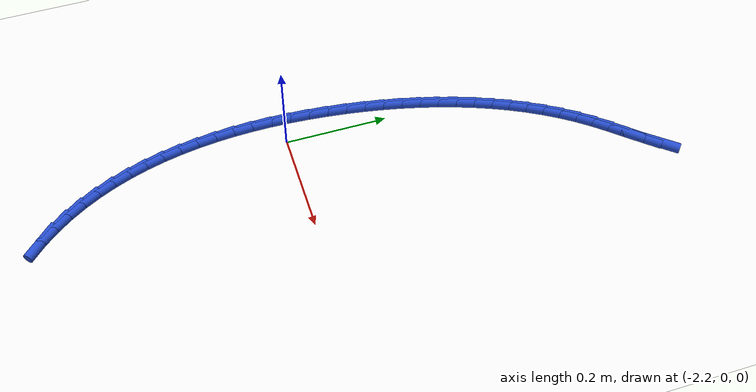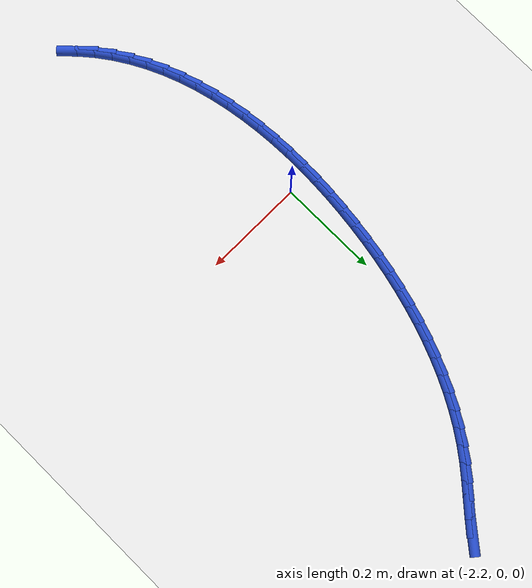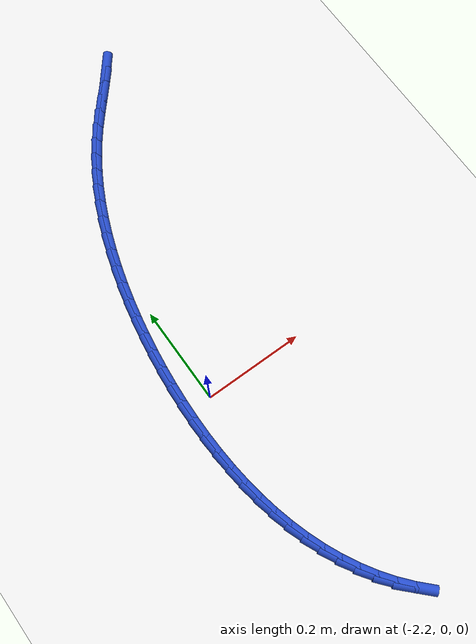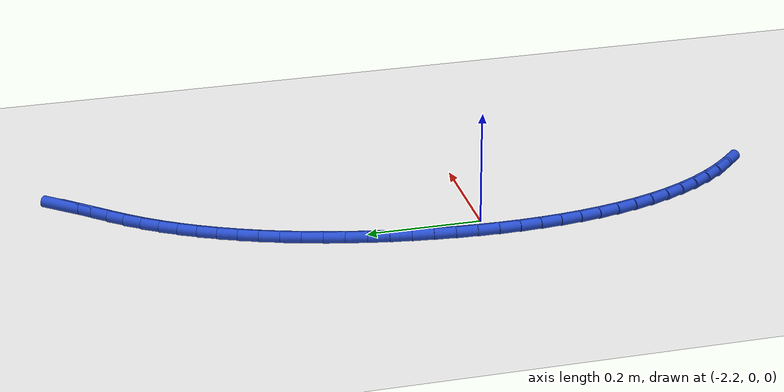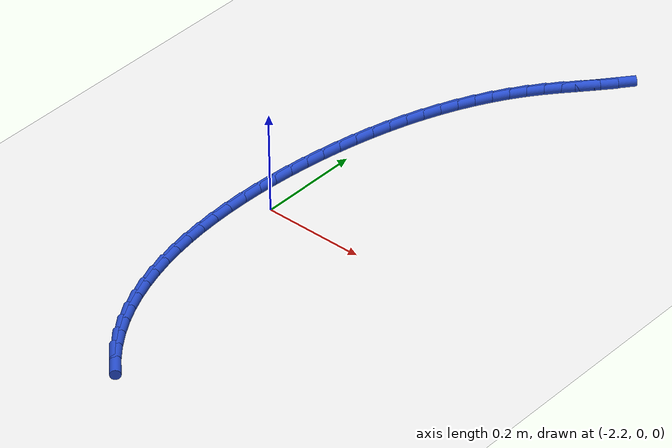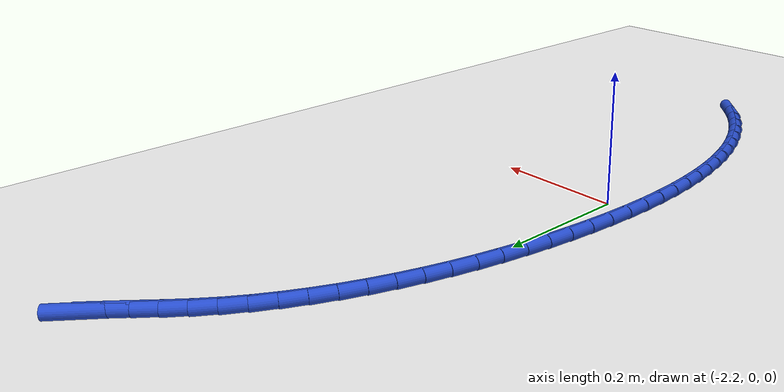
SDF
<sdf version="1.6">
 <world name="default">
  <model name="ground_plane">
   <static>1</static>
   <link name="link">
    <collision name="collision">
     <geometry><plane><normal>0 0 1</normal><size>100 100</size></plane></geometry>
     <surface><friction><ode><mu>100</mu><mu2>50</mu2></ode></friction></surface>
    </collision>
    <visual name="visual">
     <cast_shadows>0</cast_shadows>
     <geometry><plane><normal>0 0 1</normal><size>100 100</size></plane></geometry>
     <material>
      <script><uri>file://media/materials/scripts/gazebo.material</uri><name>Gazebo/WhiteGlow</name></script>
     </material>
    </visual>
   </link>
  </model>
  <model name="line">
   <link name="link_94">
    <pose>-1.9786997214927005 0.6858837882561126 0.01 0 1.57 0.8892330954018293</pose>
    <collision name="collision">
     <geometry><cylinder><radius>0.01</radius><length>0.08</length></cylinder></geometry>
    </collision>
    <visual name="visual">
     <material>
      <script><name>Gazebo/Blue</name><uri>file://media/materials/scripts/gazebo.material</uri></script>
     </material>
     <geometry><cylinder><radius>0.01</radius><length>0.08</length></cylinder></geometry>
    </visual>
   </link>
   <link name="link_95">
    <pose>-2.0004023106387288 0.6591317566187499 0.01 0 1.57 0.8581218830875417</pose>
    <collision name="collision">
     <geometry><cylinder><radius>0.01</radius><length>0.08</length></cylinder></geometry>
    </collision>
    <visual name="visual">
     <material>
      <script><name>Gazebo/Blue</name><uri>file://media/materials/scripts/gazebo.material</uri></script>
     </material>
     <geometry><cylinder><radius>0.01</radius><length>0.08</length></cylinder></geometry>
    </visual>
   </link>
   <link name="link_96">
    <pose>-2.0221857217289436 0.6339250092426056 0.01 0 1.57 0.8524767660049437</pose>
    <collision name="collision">
     <geometry><cylinder><radius>0.01</radius><length>0.08</length></cylinder></geometry>
    </collision>
    <visual name="visual">
     <material>
      <script><name>Gazebo/Blue</name><uri>file://media/materials/scripts/gazebo.material</uri></script>
     </material>
     <geometry><cylinder><radius>0.01</radius><length>0.08</length></cylinder></geometry>
    </visual>
   </link>
   <link name="link_97">
    <pose>-2.0436583433607773 0.6093595793162992 0.01 0 1.57 0.8741557944249504</pose>
    <collision name="collision">
     <geometry><cylinder><radius>0.01</radius><length>0.08</length></cylinder></geometry>
    </collision>
    <visual name="visual">
     <material>
      <script><name>Gazebo/Blue</name><uri>file://media/materials/scripts/gazebo.material</uri></script>
     </material>
     <geometry><cylinder><radius>0.01</radius><length>0.08</length></cylinder></geometry>
    </visual>
   </link>
   <link name="link_98">
    <pose>-2.064428564131662 0.584531500028451 0.01 0 1.57 0.9207193345305165</pose>
    <collision name="collision">
     <geometry><cylinder><radius>0.01</radius><length>0.08</length></cylinder></geometry>
    </collision>
    <visual name="visual">
     <material>
      <script><name>Gazebo/Blue</name><uri>file://media/materials/scripts/gazebo.material</uri></script>
     </material>
     <geometry><cylinder><radius>0.01</radius><length>0.08</length></cylinder></geometry>
    </visual>
   </link>
   <link name="link_99">
    <pose>-2.0841358140235586 0.5586120225135351 0.01 0 1.57 0.9731442164202896</pose>
    <collision name="collision">
     <geometry><cylinder><radius>0.01</radius><length>0.08</length></cylinder></geometry>
    </collision>
    <visual name="visual">
     <material>
      <script><name>Gazebo/Blue</name><uri>file://media/materials/scripts/gazebo.material</uri></script>
     </material>
     <geometry><cylinder><radius>0.01</radius><length>0.08</length></cylinder></geometry>
    </visual>
   </link>
   <link name="link_100">
    <pose>-2.1026711241217115 0.531382065240483 0.01 0 1.57 1.022707838997642</pose>
    <collision name="collision">
     <geometry><cylinder><radius>0.01</radius><length>0.08</length></cylinder></geometry>
    </collision>
    <visual name="visual">
     <material>
      <script><name>Gazebo/Blue</name><uri>file://media/materials/scripts/gazebo.material</uri></script>
     </material>
     <geometry><cylinder><radius>0.01</radius><length>0.08</length></cylinder></geometry>
    </visual>
   </link>
   <link name="link_101">
    <pose>-2.120047600828256 0.5029183535410812 0.01 0 1.57 1.069477981072272</pose>
    <collision name="collision">
     <geometry><cylinder><radius>0.01</radius><length>0.08</length></cylinder></geometry>
    </collision>
    <visual name="visual">
     <material>
      <script><name>Gazebo/Blue</name><uri>file://media/materials/scripts/gazebo.material</uri></script>
     </material>
     <geometry><cylinder><radius>0.01</radius><length>0.08</length></cylinder></geometry>
    </visual>
   </link>
   <link name="link_102">
    <pose>-2.136279156467474 0.47329956561774994 0.01 0 1.57 1.1136081157005502</pose>
    <collision name="collision">
     <geometry><cylinder><radius>0.01</radius><length>0.08</length></cylinder></geometry>
    </collision>
    <visual name="visual">
     <material>
      <script><name>Gazebo/Blue</name><uri>file://media/materials/scripts/gazebo.material</uri></script>
     </material>
     <geometry><cylinder><radius>0.01</radius><length>0.08</length></cylinder></geometry>
    </visual>
   </link>
   <link name="link_103">
    <pose>-2.1513797033636477 0.44260437967291094 0.01 0 1.57 1.1552702609832952</pose>
    <collision name="collision">
     <geometry><cylinder><radius>0.01</radius><length>0.08</length></cylinder></geometry>
    </collision>
    <visual name="visual">
     <material>
      <script><name>Gazebo/Blue</name><uri>file://media/materials/scripts/gazebo.material</uri></script>
     </material>
     <geometry><cylinder><radius>0.01</radius><length>0.08</length></cylinder></geometry>
    </visual>
   </link>
   <link name="link_104">
    <pose>-2.1653631538410587 0.4109114739089841 0.01 0 1.57 1.1946462491657448</pose>
    <collision name="collision">
     <geometry><cylinder><radius>0.01</radius><length>0.08</length></cylinder></geometry>
    </collision>
    <visual name="visual">
     <material>
      <script><name>Gazebo/Blue</name><uri>file://media/materials/scripts/gazebo.material</uri></script>
     </material>
     <geometry><cylinder><radius>0.01</radius><length>0.08</length></cylinder></geometry>
    </visual>
   </link>
   <link name="link_105">
    <pose>-2.178243420223988 0.37829952652839133 0.01 0 1.57 1.2319212000170638</pose>
    <collision name="collision">
     <geometry><cylinder><radius>0.01</radius><length>0.08</length></cylinder></geometry>
    </collision>
    <visual name="visual">
     <material>
      <script><name>Gazebo/Blue</name><uri>file://media/materials/scripts/gazebo.material</uri></script>
     </material>
     <geometry><cylinder><radius>0.01</radius><length>0.08</length></cylinder></geometry>
    </visual>
   </link>
   <link name="link_106">
    <pose>-2.1900344148367186 0.34484721573355254 0.01 0 1.57 1.267278877306762</pose>
    <collision name="collision">
     <geometry><cylinder><radius>0.01</radius><length>0.08</length></cylinder></geometry>
    </collision>
    <visual name="visual">
     <material>
      <script><name>Gazebo/Blue</name><uri>file://media/materials/scripts/gazebo.material</uri></script>
     </material>
     <geometry><cylinder><radius>0.01</radius><length>0.08</length></cylinder></geometry>
    </visual>
   </link>
   <link name="link_107">
    <pose>-2.2007500500035317 0.31063321972688956 0.01 0 1.57 1.300898577842989</pose>
    <collision name="collision">
     <geometry><cylinder><radius>0.01</radius><length>0.08</length></cylinder></geometry>
    </collision>
    <visual name="visual">
     <material>
      <script><name>Gazebo/Blue</name><uri>file://media/materials/scripts/gazebo.material</uri></script>
     </material>
     <geometry><cylinder><radius>0.01</radius><length>0.08</length></cylinder></geometry>
    </visual>
   </link>
   <link name="link_108">
    <pose>-2.210404238048709 0.2757362167108223 0.01 0 1.57 1.3329532221252494</pose>
    <collision name="collision">
     <geometry><cylinder><radius>0.01</radius><length>0.08</length></cylinder></geometry>
    </collision>
    <visual name="visual">
     <material>
      <script><name>Gazebo/Blue</name><uri>file://media/materials/scripts/gazebo.material</uri></script>
     </material>
     <geometry><cylinder><radius>0.01</radius><length>0.08</length></cylinder></geometry>
    </visual>
   </link>
   <link name="link_109">
    <pose>-2.219010891296531 0.24023488488777262 0.01 0 1.57 1.3636083593228705</pose>
    <collision name="collision">
     <geometry><cylinder><radius>0.01</radius><length>0.08</length></cylinder></geometry>
    </collision>
    <visual name="visual">
     <material>
      <script><name>Gazebo/Blue</name><uri>file://media/materials/scripts/gazebo.material</uri></script>
     </material>
     <geometry><cylinder><radius>0.01</radius><length>0.08</length></cylinder></geometry>
    </visual>
   </link>
   <link name="link_110">
    <pose>-2.226583922071282 0.20420790246016052 0.01 0 1.57 1.3930218510242398</pose>
    <collision name="collision">
     <geometry><cylinder><radius>0.01</radius><length>0.08</length></cylinder></geometry>
    </collision>
    <visual name="visual">
     <material>
      <script><name>Gazebo/Blue</name><uri>file://media/materials/scripts/gazebo.material</uri></script>
     </material>
     <geometry><cylinder><radius>0.01</radius><length>0.08</length></cylinder></geometry>
    </visual>
   </link>
   <link name="link_111">
    <pose>-2.2331372426972416 0.16773394763040772 0.01 0 1.57 1.4213440488635325</pose>
    <collision name="collision">
     <geometry><cylinder><radius>0.01</radius><length>0.08</length></cylinder></geometry>
    </collision>
    <visual name="visual">
     <material>
      <script><name>Gazebo/Blue</name><uri>file://media/materials/scripts/gazebo.material</uri></script>
     </material>
     <geometry><cylinder><radius>0.01</radius><length>0.08</length></cylinder></geometry>
    </visual>
   </link>
   <link name="link_112">
    <pose>-2.238684765498693 0.13089169860093466 0.01 0 1.57 1.448857493888139</pose>
    <collision name="collision">
     <geometry><cylinder><radius>0.01</radius><length>0.08</length></cylinder></geometry>
    </collision>
    <visual name="visual">
     <material>
      <script><name>Gazebo/Blue</name><uri>file://media/materials/scripts/gazebo.material</uri></script>
     </material>
     <geometry><cylinder><radius>0.01</radius><length>0.08</length></cylinder></geometry>
    </visual>
   </link>
   <link name="link_113">
    <pose>-2.243234977028545 0.0937613066682276 0.01 0 1.57 1.4769978282496237</pose>
    <collision name="collision">
     <geometry><cylinder><radius>0.01</radius><length>0.08</length></cylinder></geometry>
    </collision>
    <visual name="visual">
     <material>
      <script><name>Gazebo/Blue</name><uri>file://media/materials/scripts/gazebo.material</uri></script>
     </material>
     <geometry><cylinder><radius>0.01</radius><length>0.08</length></cylinder></geometry>
    </visual>
   </link>
   <link name="link_114">
    <pose>-2.2467462898878425 0.05643651818029038 0.01 0 1.57 1.506643263529076</pose>
    <collision name="collision">
     <geometry><cylinder><radius>0.01</radius><length>0.08</length></cylinder></geometry>
    </collision>
    <visual name="visual">
     <material>
      <script><name>Gazebo/Blue</name><uri>file://media/materials/scripts/gazebo.material</uri></script>
     </material>
     <geometry><cylinder><radius>0.01</radius><length>0.08</length></cylinder></geometry>
    </visual>
   </link>
   <link name="link_115">
    <pose>-2.2491500739965775 0.019018421558770277 0.01 0 1.57 1.537999929821506</pose>
    <collision name="collision">
     <geometry><cylinder><radius>0.01</radius><length>0.08</length></cylinder></geometry>
    </collision>
    <visual name="visual">
     <material>
      <script><name>Gazebo/Blue</name><uri>file://media/materials/scripts/gazebo.material</uri></script>
     </material>
     <geometry><cylinder><radius>0.01</radius><length>0.08</length></cylinder></geometry>
    </visual>
   </link>
   <link name="link_116">
    <pose>-2.2503774353145922 -0.01839182310964698 0.01 0 1.57 -1.5703149616975485</pose>
    <collision name="collision">
     <geometry><cylinder><radius>0.01</radius><length>0.08</length></cylinder></geometry>
    </collision>
    <visual name="visual">
     <material>
      <script><name>Gazebo/Blue</name><uri>file://media/materials/scripts/gazebo.material</uri></script>
     </material>
     <geometry><cylinder><radius>0.01</radius><length>0.08</length></cylinder></geometry>
    </visual>
   </link>
   <link name="link_117">
    <pose>-2.25035947980173 -0.05569305573827457 0.01 0 1.57 -1.53489565444613</pose>
    <collision name="collision">
     <geometry><cylinder><radius>0.01</radius><length>0.08</length></cylinder></geometry>
    </collision>
    <visual name="visual">
     <material>
      <script><name>Gazebo/Blue</name><uri>file://media/materials/scripts/gazebo.material</uri></script>
     </material>
     <geometry><cylinder><radius>0.01</radius><length>0.08</length></cylinder></geometry>
    </visual>
   </link>
   <link name="link_118">
    <pose>-2.2490273134178356 -0.09278411624042689 0.01 0 1.57 -1.4971047961596649</pose>
    <collision name="collision">
     <geometry><cylinder><radius>0.01</radius><length>0.08</length></cylinder></geometry>
    </collision>
    <visual name="visual">
     <material>
      <script><name>Gazebo/Blue</name><uri>file://media/materials/scripts/gazebo.material</uri></script>
     </material>
     <geometry><cylinder><radius>0.01</radius><length>0.08</length></cylinder></geometry>
    </visual>
   </link>
   <link name="link_119">
    <pose>-2.2463120421227507 -0.1295638445294152 0.01 0 1.57 -1.456705360381609</pose>
    <collision name="collision">
     <geometry><cylinder><radius>0.01</radius><length>0.08</length></cylinder></geometry>
    </collision>
    <visual name="visual">
     <material>
      <script><name>Gazebo/Blue</name><uri>file://media/materials/scripts/gazebo.material</uri></script>
     </material>
     <geometry><cylinder><radius>0.01</radius><length>0.08</length></cylinder></geometry>
    </visual>
   </link>
   <link name="link_120">
    <pose>-2.2421447718763194 -0.1659310805185539 0.01 0 1.57 -1.4134578560097304</pose>
    <collision name="collision">
     <geometry><cylinder><radius>0.01</radius><length>0.08</length></cylinder></geometry>
    </collision>
    <visual name="visual">
     <material>
      <script><name>Gazebo/Blue</name><uri>file://media/materials/scripts/gazebo.material</uri></script>
     </material>
     <geometry><cylinder><radius>0.01</radius><length>0.08</length></cylinder></geometry>
    </visual>
   </link>
   <link name="link_121">
    <pose>-2.236456608638385 -0.2017846641211562 0.01 0 1.57 -1.3671275136004153</pose>
    <collision name="collision">
     <geometry><cylinder><radius>0.01</radius><length>0.08</length></cylinder></geometry>
    </collision>
    <visual name="visual">
     <material>
      <script><name>Gazebo/Blue</name><uri>file://media/materials/scripts/gazebo.material</uri></script>
     </material>
     <geometry><cylinder><radius>0.01</radius><length>0.08</length></cylinder></geometry>
    </visual>
   </link>
   <link name="link_122">
    <pose>-2.2291786583687907 -0.23702343525053637 0.01 0 1.57 -1.3174947592467616</pose>
    <collision name="collision">
     <geometry><cylinder><radius>0.01</radius><length>0.08</length></cylinder></geometry>
    </collision>
    <visual name="visual">
     <material>
      <script><name>Gazebo/Blue</name><uri>file://media/materials/scripts/gazebo.material</uri></script>
     </material>
     <geometry><cylinder><radius>0.01</radius><length>0.08</length></cylinder></geometry>
    </visual>
   </link>
   <link name="link_123">
    <pose>-2.2202420270273784 -0.27154623382000576 0.01 0 1.57 -1.2643695693405712</pose>
    <collision name="collision">
     <geometry><cylinder><radius>0.01</radius><length>0.08</length></cylinder></geometry>
    </collision>
    <visual name="visual">
     <material>
      <script><name>Gazebo/Blue</name><uri>file://media/materials/scripts/gazebo.material</uri></script>
     </material>
     <geometry><cylinder><radius>0.01</radius><length>0.08</length></cylinder></geometry>
    </visual>
   </link>
   <link name="link_124">
    <pose>-2.209577820573993 -0.30525189974287875 0.01 0 1.57 -1.2076100391827147</pose>
    <collision name="collision">
     <geometry><cylinder><radius>0.01</radius><length>0.08</length></cylinder></geometry>
    </collision>
    <visual name="visual">
     <material>
      <script><name>Gazebo/Blue</name><uri>file://media/materials/scripts/gazebo.material</uri></script>
     </material>
     <geometry><cylinder><radius>0.01</radius><length>0.08</length></cylinder></geometry>
    </visual>
   </link>
   <link name="link_125">
    <pose>-2.197117144968478 -0.3380392729324686 0.01 0 1.57 -1.1471449411871069</pose>
    <collision name="collision">
     <geometry><cylinder><radius>0.01</radius><length>0.08</length></cylinder></geometry>
    </collision>
    <visual name="visual">
     <material>
      <script><name>Gazebo/Blue</name><uri>file://media/materials/scripts/gazebo.material</uri></script>
     </material>
     <geometry><cylinder><radius>0.01</radius><length>0.08</length></cylinder></geometry>
    </visual>
   </link>
   <link name="link_126">
    <pose>-2.1827911061706744 -0.3698071933020893 0.01 0 1.57 -1.0829991134474939</pose>
    <collision name="collision">
     <geometry><cylinder><radius>0.01</radius><length>0.08</length></cylinder></geometry>
    </collision>
    <visual name="visual">
     <material>
      <script><name>Gazebo/Blue</name><uri>file://media/materials/scripts/gazebo.material</uri></script>
     </material>
     <geometry><cylinder><radius>0.01</radius><length>0.08</length></cylinder></geometry>
    </visual>
   </link>
   <link name="link_127">
    <pose>-2.166530810140428 -0.40045450076505273 0.01 0 1.57 -1.0153192136092541</pose>
    <collision name="collision">
     <geometry><cylinder><radius>0.01</radius><length>0.08</length></cylinder></geometry>
    </collision>
    <visual name="visual">
     <material>
      <script><name>Gazebo/Blue</name><uri>file://media/materials/scripts/gazebo.material</uri></script>
     </material>
     <geometry><cylinder><radius>0.01</radius><length>0.08</length></cylinder></geometry>
    </visual>
   </link>
   <link name="link_128">
    <pose>-2.1482673628375815 -0.4298800352346729 0.01 0 1.57 -0.9443958862876332</pose>
    <collision name="collision">
     <geometry><cylinder><radius>0.01</radius><length>0.08</length></cylinder></geometry>
    </collision>
    <visual name="visual">
     <material>
      <script><name>Gazebo/Blue</name><uri>file://media/materials/scripts/gazebo.material</uri></script>
     </material>
     <geometry><cylinder><radius>0.01</radius><length>0.08</length></cylinder></geometry>
    </visual>
   </link>
   <link name="link_129">
    <pose>-2.1279318702219765 -0.4579826366242631 0.01 0 1.57 -0.8706771760183922</pose>
    <collision name="collision">
     <geometry><cylinder><radius>0.01</radius><length>0.08</length></cylinder></geometry>
    </collision>
    <visual name="visual">
     <material>
      <script><name>Gazebo/Blue</name><uri>file://media/materials/scripts/gazebo.material</uri></script>
     </material>
     <geometry><cylinder><radius>0.01</radius><length>0.08</length></cylinder></geometry>
    </visual>
   </link>
   <link name="link_130">
    <pose>-2.1054554382534585 -0.4846611448471367 0.01 0 1.57 -0.7949014766260104</pose>
    <collision name="collision">
     <geometry><cylinder><radius>0.01</radius><length>0.08</length></cylinder></geometry>
    </collision>
    <visual name="visual">
     <material>
      <script><name>Gazebo/Blue</name><uri>file://media/materials/scripts/gazebo.material</uri></script>
     </material>
     <geometry><cylinder><radius>0.01</radius><length>0.08</length></cylinder></geometry>
    </visual>
   </link>
  </model>
 </world>
</sdf>
